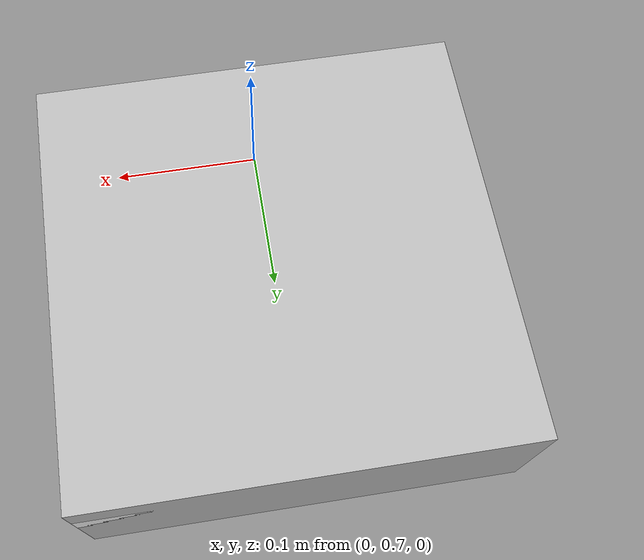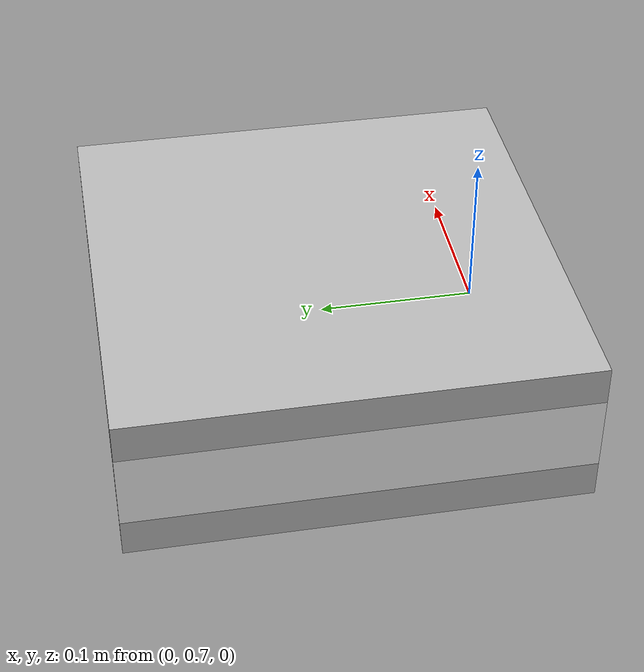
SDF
<?xml version='1.0'?>
<sdf version='1.6'>
  <model name='aruco_visual_marker_quarter'>

    <link name='marker'>
      <pose frame=''>0 0.8 0 0 0 0</pose>
      <visual name='visual'>
        <geometry>
          <box>
            <size>0.292 0.292 1e-1</size>
          </box>
        </geometry>
        <material>
          <script>
            <uri>model://aruco_visual_marker_quarter/materials/scripts</uri>
            <uri>model://aruco_visual_marker_quarter/materials/textures</uri>
            <name>ArucoVisualMarkerQuarter/Marker</name>
          </script>
        </material>
        <pose frame=''>0 0 0 0 -0 0</pose>
      </visual>
      <collision name='collision'>
        <laser_retro>0</laser_retro>
        <max_contacts>10</max_contacts>
        <pose frame=''>0 0 0 0 -0 0</pose>
        <geometry>
          <box>
            <size>0.292 0.292 5e-1</size>
          </box>
        </geometry>
      </collision>
    </link>

    <link name='marker_pad'>
      <pose frame='marker'>0 0 -1e-5 0 -0 0</pose>
      <visual name='visual'>
        <geometry>
          <box>
            <size>0.292 0.292 0.5e-1</size>
          </box>
        </geometry>
        <material>
          <script>
            <uri>file://media/materials/scripts/gazebo.material</uri>
            <name>Gazebo/White</name>
          </script>
        </material>
        <cast_shadows>1</cast_shadows>
        <transparency>0</transparency>
      </visual>
      <collision name='collision'>
        <laser_retro>0</laser_retro>
        <max_contacts>10</max_contacts>
        <pose frame=''>0 0 0 0 -0 0</pose>
        <geometry>
          <box>
            <size>0.292 0.292 1e-1</size>
          </box>
        </geometry>
      </collision>
    </link>

    <joint name='marker_JOINT_marker_pad' type='revolute'>
      <parent>marker</parent>
      <child>marker_pad</child>
      <pose frame=''>0 0 0 0 -0 0</pose>
      <axis>
        <xyz>0 0 1</xyz>
        <limit>
          <upper>0</upper>
          <lower>0</lower>
        </limit>
      </axis>
    </joint>

    <static>1</static>
    <allow_auto_disable>1</allow_auto_disable>

  </model>
</sdf>
